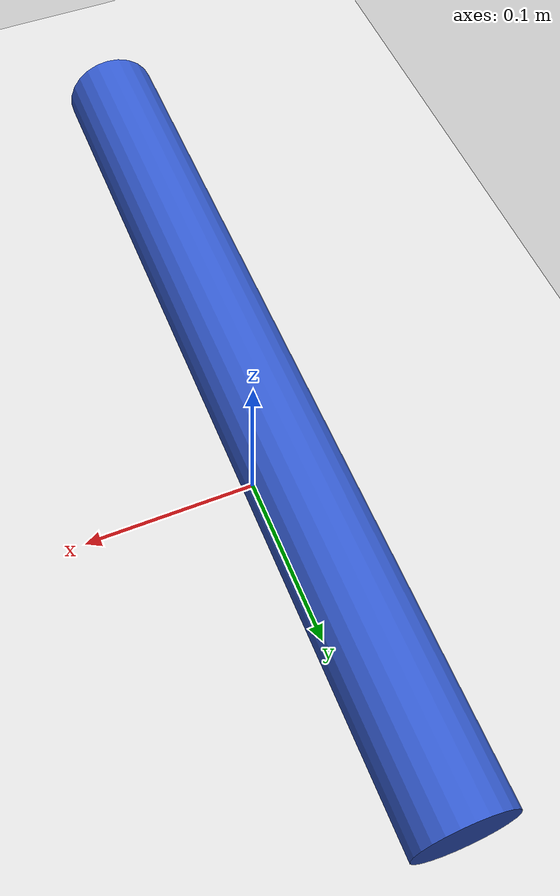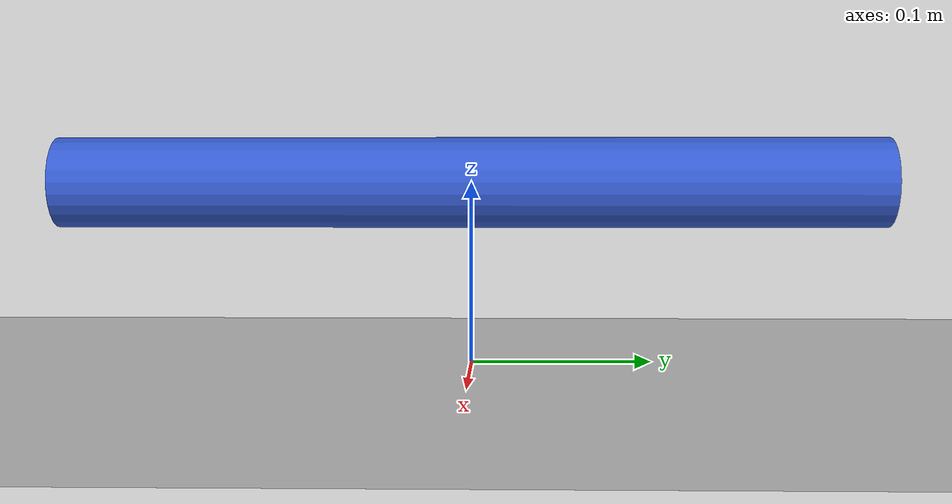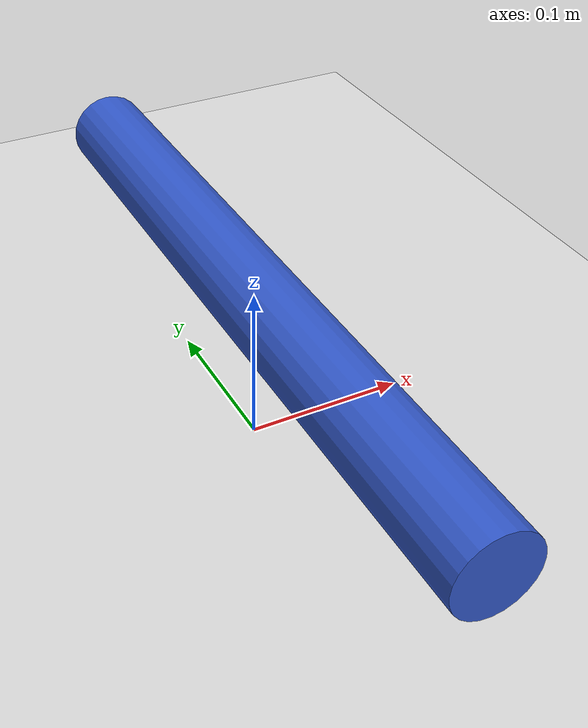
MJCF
<mujoco model="body">

    <worldbody>

        <light pos="0 0 2"
               dir="0 0 -1"/>

        <geom
            type="plane"
            size="2 2 0.1"
            rgba="0.85 0.85 0.85 1"
        />

        <body pos="0 0 0.1">
            <geom
                type="cylinder"
                fromto="0 -0.23 0 0 0.23 0"
                size="0.025"
                rgba="0.20 0.35 0.80 1"
            />
        </body>

    </worldbody>

</mujoco>
